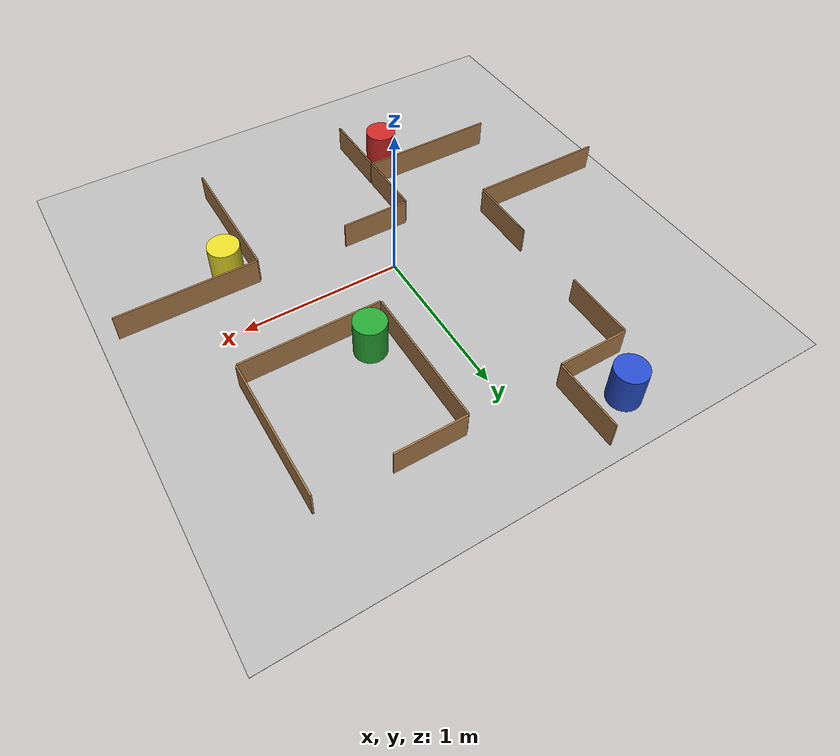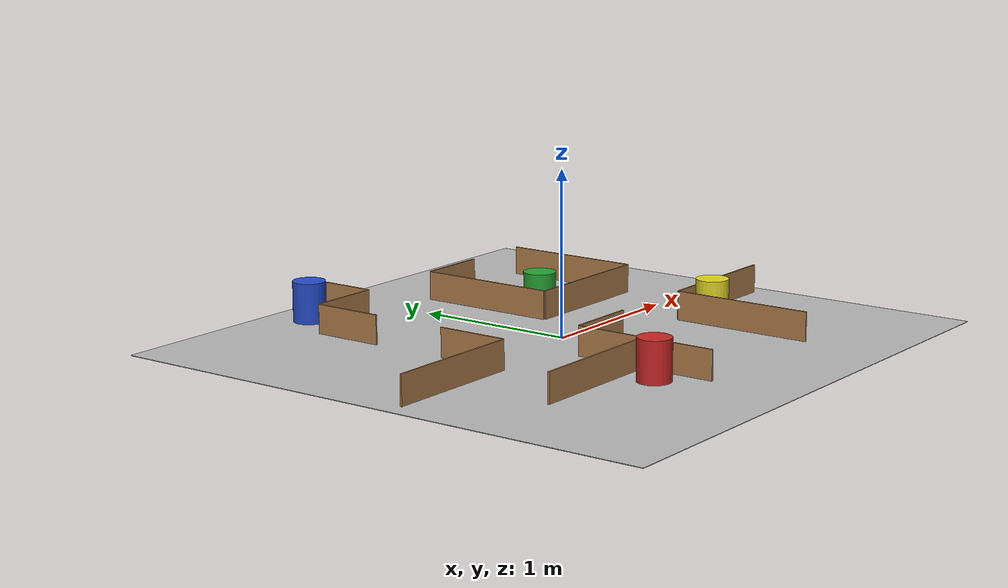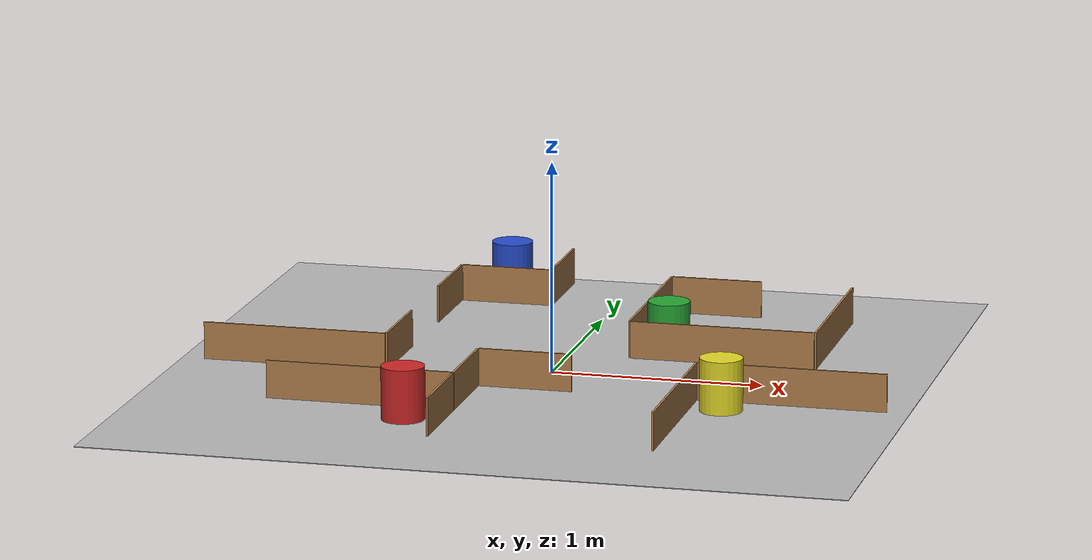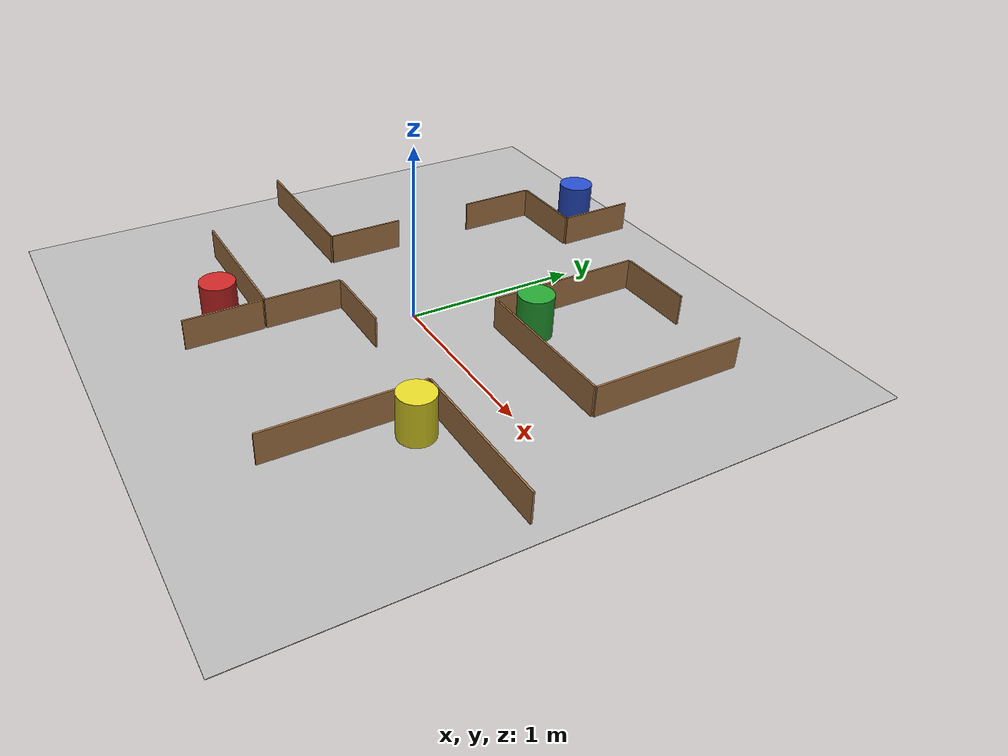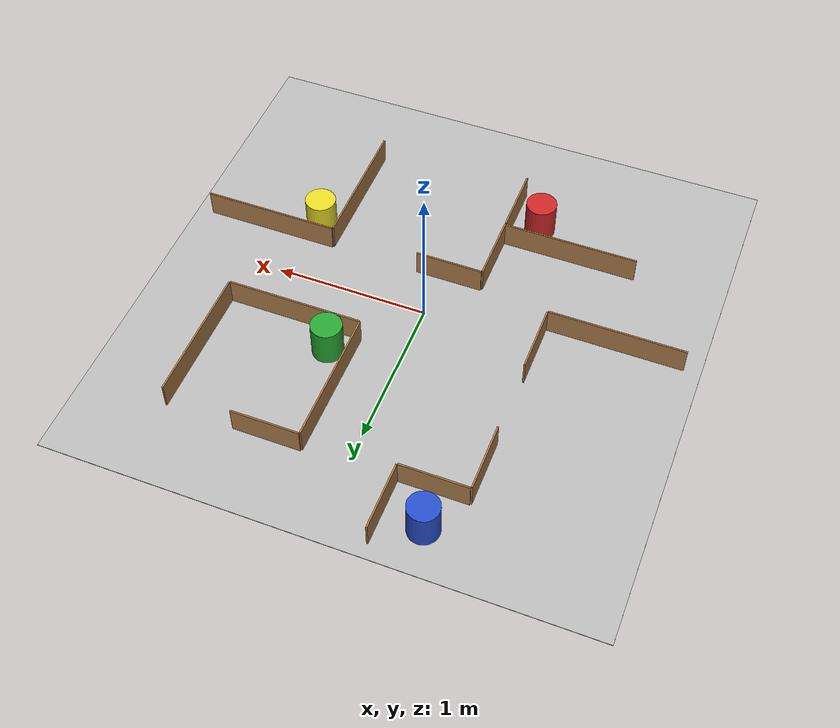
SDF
<?xml version="1.0"?>
<sdf version="1.4">
<model name="exploration">
  <static>true</static>
    <link name="floor">
      <collision name="collision">
        <geometry>
          <plane>
            <normal>0 0 1</normal>
            <size>3.5 3.5</size>
          </plane>
        </geometry>
        <surface>
          <friction>
            <ode>
              <mu>100</mu>
              <mu2>50</mu2>
            </ode>
          </friction>
        </surface>
      </collision>
      <visual name="visual">
        <cast_shadows>false</cast_shadows>
        <geometry>
          <plane>
            <normal>0 0 1</normal>
            <size>3.5 3.5</size>
          </plane>
        </geometry>
        <material>
          <script>
            <uri>model://exploration/materials/scripts</uri>
            <uri>model://exploration/materials/textures</uri>
            <name>ExplorationFloor/Image</name>
          </script>
        </material>
      </visual>
    </link>
    <link name='BLUE'>
      <pose frame=''>-0.56572 1.46094 0.125 0 0 0</pose>
      <collision name='coll'>
        <geometry>
          <cylinder>
            <radius>0.1</radius>
            <length>0.25</length>
          </cylinder>
        </geometry>
        <max_contacts>10</max_contacts>
        <surface>
          <bounce/>
          <friction>
            <ode/>
          </friction>
          <contact>
            <ode/>
          </contact>
        </surface>
      </collision>
      <visual name='vis'>
        <geometry>
          <cylinder>
            <radius>0.1</radius>
            <length>0.25</length>
          </cylinder>
        </geometry>
        <material>
          <script>
            <uri>file://media/materials/scripts/gazebo.material</uri>
            <name>Gazebo/Blue</name>
          </script>
        </material>
      </visual>
    </link>
    <link name='RED'>
      <pose frame=''>-0.45525 -0.95077 0.125 0 0 0</pose>
      <collision name='coll'>
        <geometry>
          <cylinder>
            <radius>0.1</radius>
            <length>0.25</length>
          </cylinder>
        </geometry>
        <max_contacts>10</max_contacts>
        <surface>
          <bounce/>
          <friction>
            <ode/>
          </friction>
          <contact>
            <ode/>
          </contact>
        </surface>
      </collision>
      <visual name='vis'>
        <geometry>
          <cylinder>
            <radius>0.1</radius>
            <length>0.25</length>
          </cylinder>
        </geometry>
        <material>
          <script>
            <uri>file://media/materials/scripts/gazebo.material</uri>
            <name>Gazebo/Red</name>
          </script>
        </material>
      </visual>
    </link>
    <link name='GREEN'>
      <pose frame=''>0.44531 0.48896 0.125 0 0 0</pose>
      <collision name='coll'>
        <geometry>
          <cylinder>
            <radius>0.1</radius>
            <length>0.25</length>
          </cylinder>
        </geometry>
        <max_contacts>10</max_contacts>
        <surface>
          <bounce/>
          <friction>
            <ode/>
          </friction>
          <contact>
            <ode/>
          </contact>
        </surface>
      </collision>
      <visual name='vis'>
        <geometry>
          <cylinder>
            <radius>0.1</radius>
            <length>0.25</length>
          </cylinder>
        </geometry>
        <material>
          <script>
            <uri>file://media/materials/scripts/gazebo.material</uri>
            <name>Gazebo/Green</name>
          </script>
        </material>
      </visual>
    </link>
    <link name='YELLOW'>
      <pose frame=''>0.90661 -0.46371 0.125 0 0 0</pose>
      <collision name='coll'>
        <geometry>
          <cylinder>
            <radius>0.1</radius>
            <length>0.25</length>
          </cylinder>
        </geometry>
        <max_contacts>10</max_contacts>
        <surface>
          <bounce/>
          <friction>
            <ode/>
          </friction>
          <contact>
            <ode/>
          </contact>
        </surface>
      </collision>
      <visual name='vis'>
        <geometry>
          <cylinder>
            <radius>0.1</radius>
            <length>0.25</length>
          </cylinder>
        </geometry>
        <material>
          <script>
            <uri>file://media/materials/scripts/gazebo.material</uri>
            <name>Gazebo/Yellow</name>
          </script>
        </material>
      </visual>
    </link>
    <link name='room_1'>
      <pose frame=''>1.19833 -0.75365 0.09 0 0 0</pose>
      <collision name='long_1coll'>
        <geometry>
          <box>
            <size>0.88 0.01 0.18</size>
          </box>
        </geometry>
        <pose frame=''>0.005 0.44 0 0 0 0</pose>
      </collision>
      <visual name='long_1vis'>
        <pose frame=''>0.005 0.44 0 0 0 0</pose>
        <geometry>
          <box>
            <size>0.88 0.01 0.18</size>
          </box>
        </geometry>
        <material>
          <script>
            <uri>file://media/materials/scripts/gazebo.material</uri>
            <name>Gazebo/Wood</name>
          </script>
        </material>
      </visual>
      <collision name='long_2coll'>
        <geometry>
          <box>
            <size>0.01 0.88 0.18</size>
          </box>
        </geometry>
        <pose frame=''>-0.44 -0.005 0 0 0 0</pose>
      </collision>
      <visual name='long_2vis'>
        <pose frame=''>-0.44 -0.005 0 0 0 0</pose>
        <geometry>
          <box>
            <size>0.01 0.88 0.18</size>
          </box>
        </geometry>
        <material>
          <script>
            <uri>file://media/materials/scripts/gazebo.material</uri>
            <name>Gazebo/Wood</name>
          </script>
        </material>
      </visual>
    </link>
    <link name='room_2'>
      <pose frame=''>0.73417 0.78209 0.09 0 0 0</pose>
      <collision name='long_1coll'>
        <geometry>
          <box>
            <size>0.01 0.88 0.18</size>
          </box>
        </geometry>
        <pose frame=''>-0.445 0 0 0 0 0</pose>
      </collision>
      <visual name='long_1vis'>
        <pose frame=''>-0.445 0 0 0 0 0</pose>
        <geometry>
          <box>
            <size>0.01 0.88 0.18</size>
          </box>
        </geometry>
        <material>
          <script>
            <uri>file://media/materials/scripts/gazebo.material</uri>
            <name>Gazebo/Wood</name>
          </script>
        </material>
      </visual>
      <collision name='short_1coll'>
        <geometry>
          <box>
            <size>0.44 0.01 0.18</size>
          </box>
        </geometry>
        <pose frame=''>-0.22 0.445 0 0 0 0</pose>
      </collision>
      <visual name='short_1vis'>
        <pose frame=''>-0.22 0.445 0 0 0 0</pose>
        <geometry>
          <box>
            <size>0.44 0.01 0.18</size>
          </box>
        </geometry>
        <material>
          <script>
            <uri>file://media/materials/scripts/gazebo.material</uri>
            <name>Gazebo/Wood</name>
          </script>
        </material>
      </visual>
      <collision name='long_2coll'>
        <geometry>
          <box>
            <size>0.88 0.01 0.18</size>
          </box>
        </geometry>
        <pose frame=''>0 -0.445 0 0 0 0</pose>
      </collision>
      <visual name='long_2vis'>
        <pose frame=''>0 -0.445 0 0 0 0</pose>
        <geometry>
          <box>
            <size>0.88 0.01 0.18</size>
          </box>
        </geometry>
        <material>
          <script>
            <uri>file://media/materials/scripts/gazebo.material</uri>
            <name>Gazebo/Wood</name>
          </script>
        </material>
      </visual>
      <collision name='long_3coll'>
        <geometry>
          <box>
            <size>0.01 0.88 0.18</size>
          </box>
        </geometry>
        <pose frame=''>0.445 0 0 0 0 0</pose>
      </collision>
      <visual name='long_3vis'>
        <pose frame=''>0.445 0 0 0 0 0</pose>
        <geometry>
          <box>
            <size>0.01 0.88 0.18</size>
          </box>
        </geometry>
        <material>
          <script>
            <uri>file://media/materials/scripts/gazebo.material</uri>
            <name>Gazebo/Wood</name>
          </script>
        </material>
      </visual>
    </link>
    <link name='room_3'>
      <pose frame=''>-0.49291 -0.75865 0.09 0 0 0</pose>
      <collision name='long_1coll'>
        <geometry>
          <box>
            <size>0.88 0.01 0.18</size>
          </box>
        </geometry>
        <pose frame=''>-0.225 0.005 0 0 0 0</pose>
      </collision>
      <visual name='long_1vis'>
        <pose frame=''>-0.225 0.005 0 0 0 0</pose>
        <geometry>
          <box>
            <size>0.88 0.01 0.18</size>
          </box>
        </geometry>
        <material>
          <script>
            <uri>file://media/materials/scripts/gazebo.material</uri>
            <name>Gazebo/Wood</name>
          </script>
        </material>
      </visual>
      <collision name='short_1coll'>
        <geometry>
          <box>
            <size>0.01 0.44 0.18</size>
          </box>
        </geometry>
        <pose frame=''>0.22 -0.23 0 0 0 0</pose>
      </collision>
      <visual name='short_1vis'>
        <pose frame=''>0.22 -0.23 0 0 0 0</pose>
        <geometry>
          <box>
            <size>0.01 0.44 0.18</size>
          </box>
        </geometry>
        <material>
          <script>
            <uri>file://media/materials/scripts/gazebo.material</uri>
            <name>Gazebo/Wood</name>
          </script>
        </material>
      </visual>
      <collision name='short_2coll'>
        <geometry>
          <box>
            <size>0.01 0.44 0.18</size>
          </box>
        </geometry>
        <pose frame=''>0.22 0.22 0 0 0 0</pose>
      </collision>
      <visual name='short_2vis'>
        <pose frame=''>0.22 0.22 0 0 0 0</pose>
        <geometry>
          <box>
            <size>0.01 0.44 0.18</size>
          </box>
        </geometry>
        <material>
          <script>
            <uri>file://media/materials/scripts/gazebo.material</uri>
            <name>Gazebo/Wood</name>
          </script>
        </material>
      </visual>
      <collision name='short_3coll'>
        <geometry>
          <box>
            <size>0.44 0.01 0.18</size>
          </box>
        </geometry>
        <pose frame=''>0.445 0.445 0 0 0 0</pose>
      </collision>
      <visual name='short_3vis'>
        <pose frame=''>0.445 0.445 0 0 0 0</pose>
        <geometry>
          <box>
            <size>0.44 0.01 0.18</size>
          </box>
        </geometry>
        <material>
          <script>
            <uri>file://media/materials/scripts/gazebo.material</uri>
            <name>Gazebo/Wood</name>
          </script>
        </material>
      </visual>
    </link>
    <link name='room_4'>
      <pose frame=''>-0.9723 0.74916 0.09 0 0 0</pose>
      <collision name='long_1coll'>
        <geometry>
          <box>
            <size>0.88 0.01 0.18</size>
          </box>
        </geometry>
        <pose frame=''>-0.23 -0.905 0 0 0 0</pose>
      </collision>
      <visual name='long_1vis'>
        <pose frame=''>-0.23 -0.905 0 0 0 0</pose>
        <geometry>
          <box>
            <size>0.88 0.01 0.18</size>
          </box>
        </geometry>
        <material>
          <script>
            <uri>file://media/materials/scripts/gazebo.material</uri>
            <name>Gazebo/Wood</name>
          </script>
        </material>
      </visual>
      <collision name='short_1coll'>
        <geometry>
          <box>
            <size>0.01 0.44 0.18</size>
          </box>
        </geometry>
        <pose frame=''>0.215 -0.68 0 0 0 0</pose>
      </collision>
      <visual name='short_1vis'>
        <pose frame=''>0.215 -0.68 0 0 0 0</pose>
        <geometry>
          <box>
            <size>0.01 0.44 0.18</size>
          </box>
        </geometry>
        <material>
          <script>
            <uri>file://media/materials/scripts/gazebo.material</uri>
            <name>Gazebo/Wood</name>
          </script>
        </material>
      </visual>
      <collision name='short_2coll'>
        <geometry>
          <box>
            <size>0.01 0.44 0.18</size>
          </box>
        </geometry>
        <pose frame=''>0.215 0.24 0 0 0 0</pose>
      </collision>
      <visual name='short_2vis'>
        <pose frame=''>0.215 0.24 0 0 0 0</pose>
        <geometry>
          <box>
            <size>0.01 0.44 0.18</size>
          </box>
        </geometry>
        <material>
          <script>
            <uri>file://media/materials/scripts/gazebo.material</uri>
            <name>Gazebo/Wood</name>
          </script>
        </material>
      </visual>
      <collision name='short_3coll'>
        <geometry>
          <box>
            <size>0.44 0.01 0.18</size>
          </box>
        </geometry>
        <pose frame=''>0.44 0.465 0 0 0 0</pose>
      </collision>
      <visual name='short_3vis'>
        <pose frame=''>0.44 0.465 0 0 0 0</pose>
        <geometry>
          <box>
            <size>0.44 0.01 0.18</size>
          </box>
        </geometry>
        <material>
          <script>
            <uri>file://media/materials/scripts/gazebo.material</uri>
            <name>Gazebo/Wood</name>
          </script>
        </material>
      </visual>
      <collision name='short_4coll'>
        <geometry>
          <box>
            <size>0.01 0.44 0.18</size>
          </box>
        </geometry>
        <pose frame=''>0.665 0.69 0 0 0 0</pose>
      </collision>
      <visual name='short_4vis'>
        <pose frame=''>0.665 0.69 0 0 0 0</pose>
        <geometry>
          <box>
            <size>0.01 0.44 0.18</size>
          </box>
        </geometry>
        <material>
          <script>
            <uri>file://media/materials/scripts/gazebo.material</uri>
            <name>Gazebo/Wood</name>
          </script>
        </material>
      </visual>
    </link>
  </model>
</sdf>
